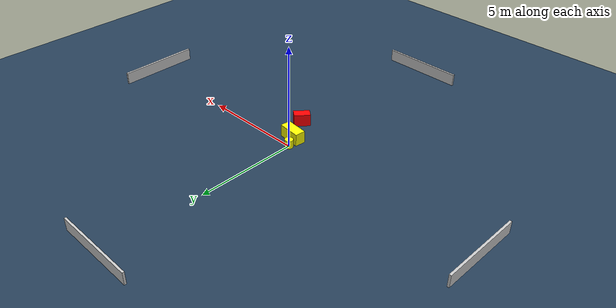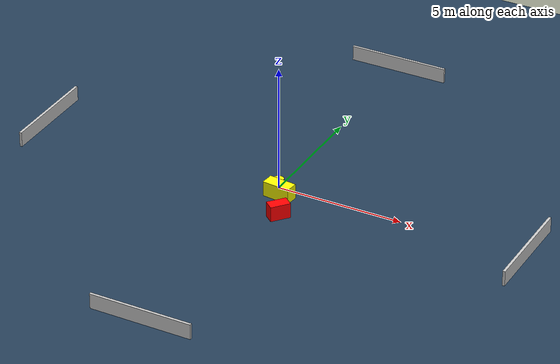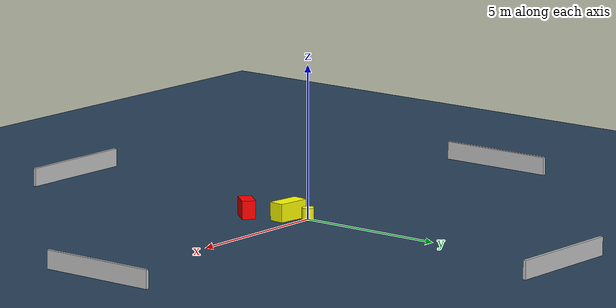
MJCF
<?xml version="1.0" ?>
<mujoco model="generated_environment">
  <option timestep="0.01" integrator="RK4" cone="elliptic"/>
  <default>
    <geom density="1"/>
  </default>
  <asset>
    <texture builtin="gradient" height="3072" name="skybox" rgb1="0.3 0.5 0.7" rgb2="0 0 0" type="skybox" width="512"/>
    <texture builtin="checker" height="300" name="groundplane" rgb1="0.2 0.3 0.4" rgb2="0.1 0.2 0.3" type="2d" width="300"/>
    <material name="groundplane" reflectance="0.2" texrepeat="5 5" texture="groundplane"/>
  </asset>
  <worldbody>
    <light dir="0 0 -1" directional="true" pos="0 0 1.5"/>
    <geom condim="3" friction="0.5 0.005 0.001" material="groundplane" name="floor" pos="0 0 0" size="0 0 0.05" type="plane"/>
    <body name="walls">
      <geom name="wall_1" condim="4" pos="-10.0 0.0 0.3" rgba="0.800000011920929 0.800000011920929 0.800000011920929 1.0" size="0.05 2.0 0.3" type="box"/>
      <geom name="wall_2" condim="4" pos="10.0 0.0 0.3" rgba="0.800000011920929 0.800000011920929 0.800000011920929 1.0" size="0.05 2.0 0.3" type="box"/>
      <geom name="wall_3" condim="4" pos="0.0 -10.0 0.3" rgba="0.800000011920929 0.800000011920929 0.800000011920929 1.0" size="2.0 0.05 0.3" type="box"/>
      <geom name="wall_4" condim="4" pos="0.0 10.0 0.3" rgba="0.800000011920929 0.800000011920929 0.800000011920929 1.0" size="2.0 0.05 0.3" type="box"/>
    </body>
    <body name="robot">
      <joint name="joint_x" type="slide" pos="0 0 0" axis="1 0 0"/>
      <joint name="joint_y" type="slide" pos="0 0 0" axis="0 1 0"/>
      <geom name="robot" type="cylinder" pos="0.0 0.0 0.2" size="0.2 0.2 0.0" mass="5.0" friction="1.0 0.005 0.0001" condim="4" rgba="1.0 1.0 0.0 1.0"/>
    </body>
    <body name="obstacle_1_movable">
      <geom name="obstacle_1_movable" condim="4" pos="0.3174332956998356 -0.5523199320355433 0.3" euler="0 0 83.95333310467316" friction="0.0 0.005 0.001" rgba="1.0 1.0 0.0 1.0" size="0.2566803146164264 0.5486231542766768 0.3" type="box" mass="0.1"/>
      <joint type="free"/>
    </body>
    <body name="obstacle_2_static">
      <geom name="obstacle_2_static" condim="4" pos="0.9348565477856913 -1.7665773634975266 0.3" euler="0 0 50.46695599685444" friction="0.0 0.005 0.001" rgba="1.0 0.0 0.0 1.0" size="0.39171570449224746 0.22048352205649374 0.3" type="box"/>
    </body>
  </worldbody>
  <actuator>
    <motor name="actuator_x" joint="joint_x" gear="1" ctrlrange="-1 1"/>
    <motor name="actuator_y" joint="joint_y" gear="1" ctrlrange="-1 1"/>
  </actuator>
</mujoco>
